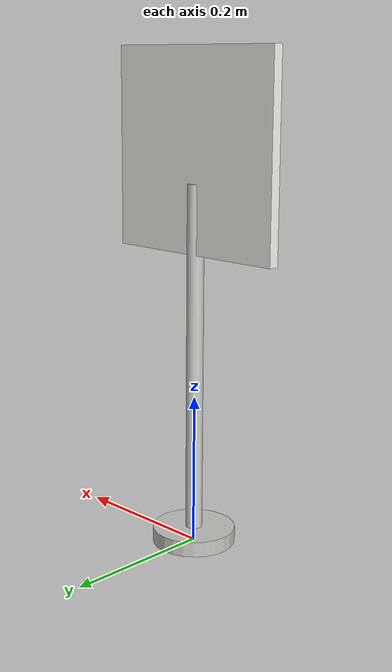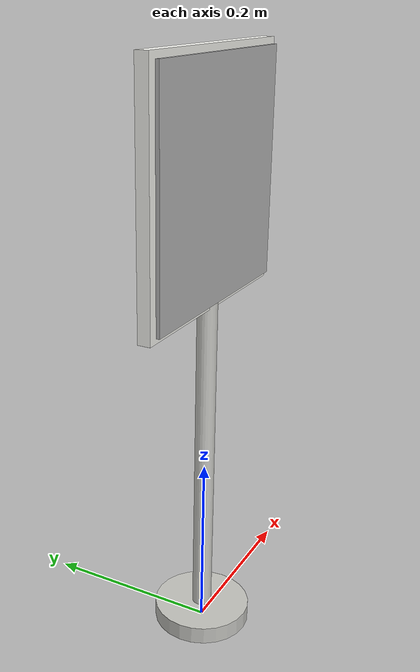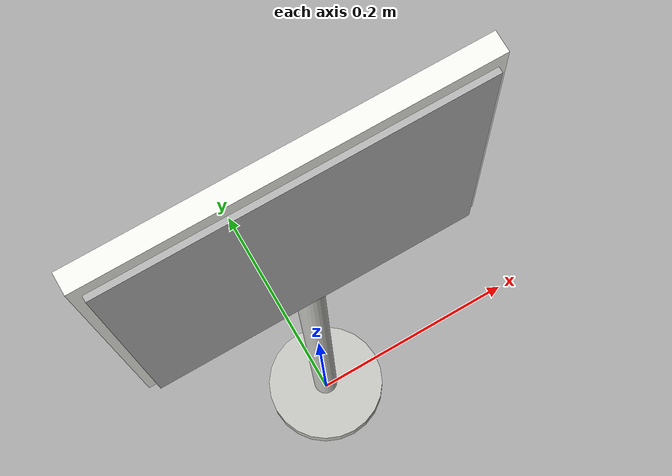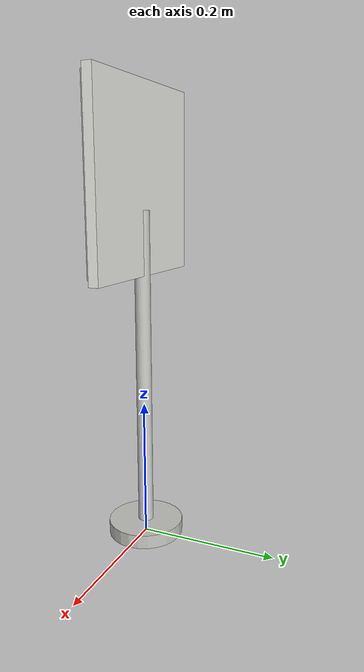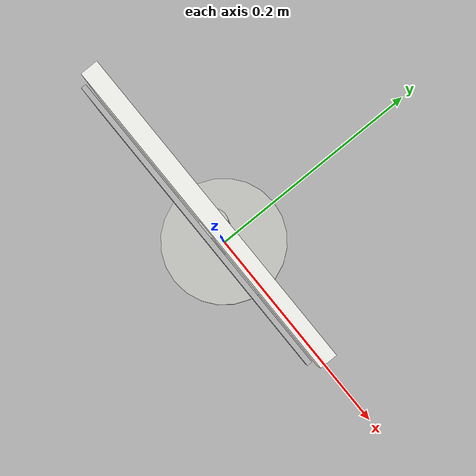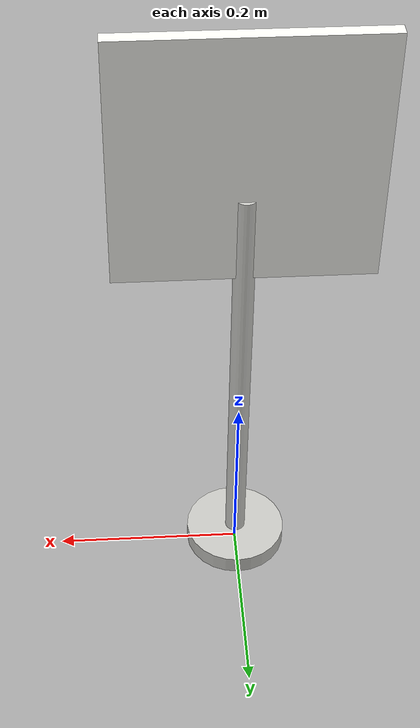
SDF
<?xml version="1.0"?>
<sdf version="1.6">
  <model name="road_sign_speed_limit">
    <static>true</static>
    <link name="sign_link">
      <visual name="base_visual">
        <pose>0 0 0.010 0 0 0</pose>
        <geometry>
          <cylinder>
            <radius>0.055</radius>
            <length>0.020</length>
          </cylinder>
        </geometry>
        <material>
          <ambient>0.72 0.72 0.70 1</ambient>
          <diffuse>0.78 0.78 0.76 1</diffuse>
        </material>
      </visual>
      <visual name="pole_visual">
        <pose>0 0 0.245 0 0 0</pose>
        <geometry>
          <cylinder>
            <radius>0.011</radius>
            <length>0.470</length>
          </cylinder>
        </geometry>
        <material>
          <ambient>0.72 0.72 0.70 1</ambient>
          <diffuse>0.82 0.82 0.80 1</diffuse>
        </material>
      </visual>
      <visual name="back_plate_visual">
        <pose>0 0 0.520 0 0 0</pose>
        <geometry>
          <box>
            <size>0.260 0.014 0.260</size>
          </box>
        </geometry>
        <material>
          <ambient>0.96 0.96 0.94 1</ambient>
          <diffuse>0.98 0.98 0.96 1</diffuse>
        </material>
      </visual>
      <visual name="sign_face_visual">
        <pose>0 -0.011 0.520 0 0 0</pose>
        <geometry>
          <box>
            <size>0.246 0.004 0.246</size>
          </box>
        </geometry>
        <material>
          <script>
            <uri>model://road_sign_speed_limit/materials/scripts</uri>
            <uri>model://road_sign_speed_limit/materials/textures</uri>
            <name>RoadSign/SpeedLimit</name>
          </script>
        </material>
      </visual>
    </link>
  </model>
</sdf>
